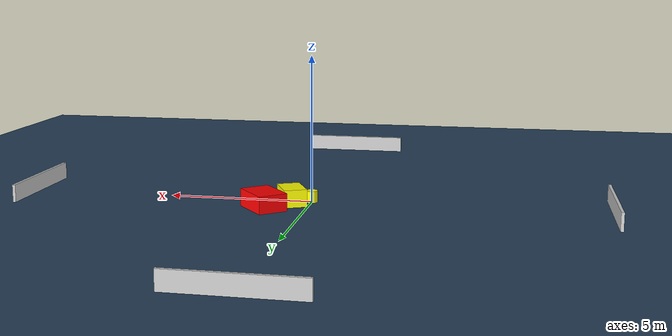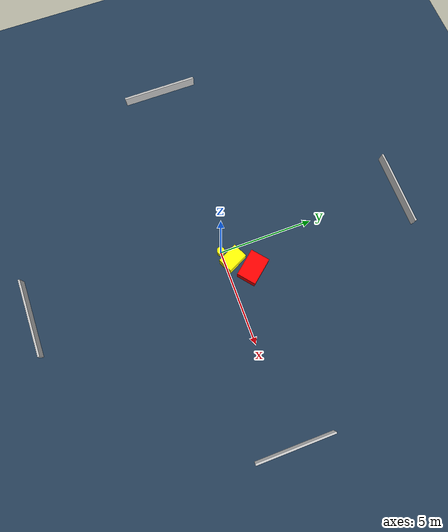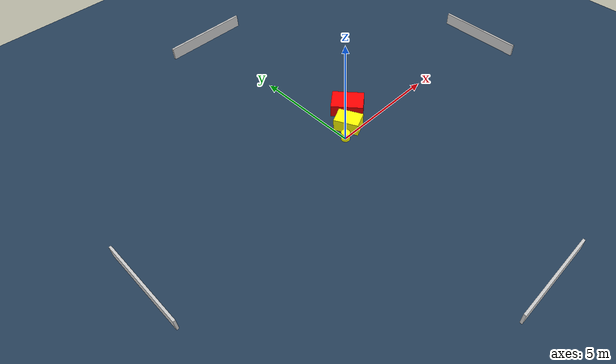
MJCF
<?xml version="1.0" ?>
<mujoco model="generated_environment">
  <option timestep="0.01" integrator="RK4" cone="elliptic"/>
  <default>
    <geom density="1"/>
  </default>
  <asset>
    <texture builtin="gradient" height="3072" name="skybox" rgb1="0.3 0.5 0.7" rgb2="0 0 0" type="skybox" width="512"/>
    <texture builtin="checker" height="300" name="groundplane" rgb1="0.2 0.3 0.4" rgb2="0.1 0.2 0.3" type="2d" width="300"/>
    <material name="groundplane" reflectance="0.2" texrepeat="5 5" texture="groundplane"/>
  </asset>
  <worldbody>
    <light dir="0 0 -1" directional="true" pos="0 0 1.5"/>
    <geom condim="3" friction="0.5 0.005 0.001" material="groundplane" name="floor" pos="0 0 0" size="0 0 0.05" type="plane"/>
    <body name="walls">
      <geom name="wall_1" condim="4" pos="-10.0 0.0 0.3" rgba="0.800000011920929 0.800000011920929 0.800000011920929 1.0" size="0.05 2.0 0.3" type="box"/>
      <geom name="wall_2" condim="4" pos="10.0 0.0 0.3" rgba="0.800000011920929 0.800000011920929 0.800000011920929 1.0" size="0.05 2.0 0.3" type="box"/>
      <geom name="wall_3" condim="4" pos="0.0 -10.0 0.3" rgba="0.800000011920929 0.800000011920929 0.800000011920929 1.0" size="2.0 0.05 0.3" type="box"/>
      <geom name="wall_4" condim="4" pos="0.0 10.0 0.3" rgba="0.800000011920929 0.800000011920929 0.800000011920929 1.0" size="2.0 0.05 0.3" type="box"/>
    </body>
    <body name="robot">
      <joint name="joint_x" type="slide" pos="0 0 0" axis="1 0 0"/>
      <joint name="joint_y" type="slide" pos="0 0 0" axis="0 1 0"/>
      <geom name="robot" type="cylinder" pos="0.0 0.0 0.2" size="0.2 0.2 0.0" mass="5.0" friction="1.0 0.005 0.0001" condim="4" rgba="1.0 1.0 0.0 1.0"/>
    </body>
    <body name="obstacle_1_movable">
      <geom name="obstacle_1_movable" condim="4" pos="0.6113928415919502 0.4177007179876267 0.3" euler="0 0 205.66038638317886" friction="0.0 0.005 0.001" rgba="1.0 1.0 0.0 1.0" size="0.39213038595756733 0.5651597307379779 0.3" type="box" mass="0.1"/>
      <joint type="free"/>
    </body>
    <body name="obstacle_2_static">
      <geom name="obstacle_2_static" condim="4" pos="1.3997494147143579 1.2261128613726016 0.3" euler="0 0 309.5924505159877" friction="0.0 0.005 0.001" rgba="1.0 0.0 0.0 1.0" size="0.7294811476319789 0.5106032500531562 0.3" type="box"/>
    </body>
  </worldbody>
  <actuator>
    <motor name="actuator_x" joint="joint_x" gear="1" ctrlrange="-1 1"/>
    <motor name="actuator_y" joint="joint_y" gear="1" ctrlrange="-1 1"/>
  </actuator>
</mujoco>
